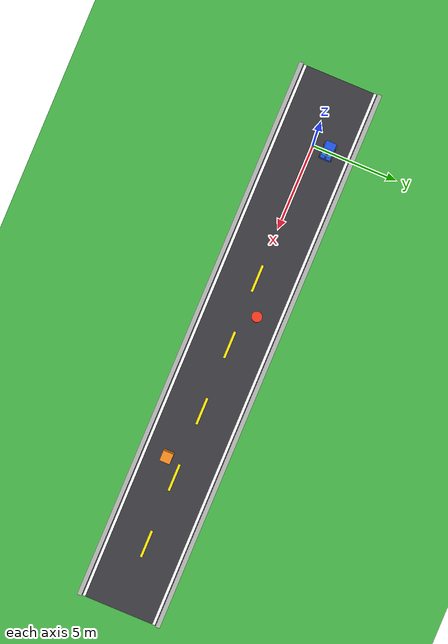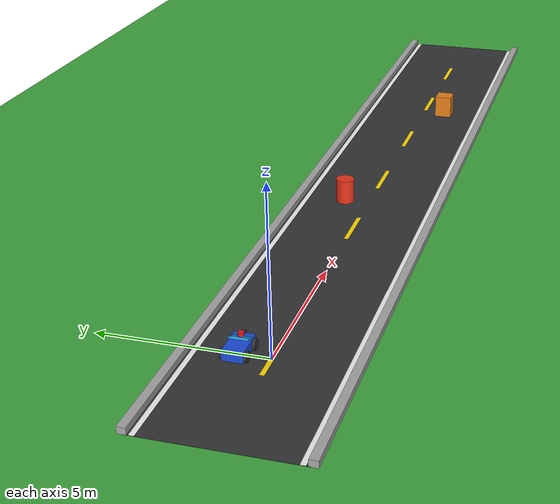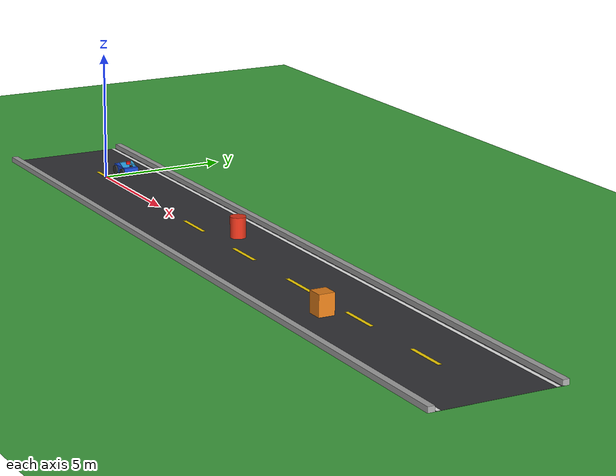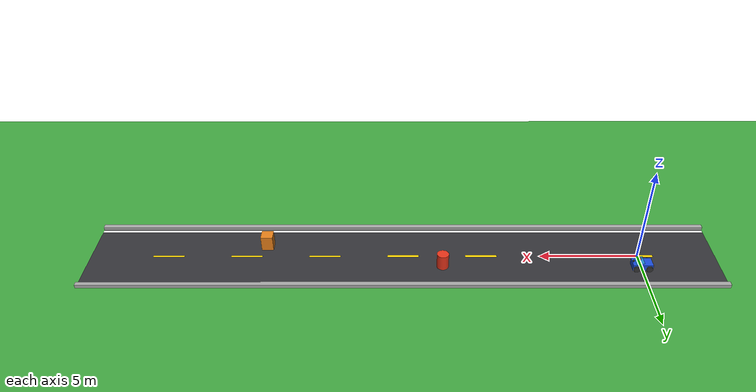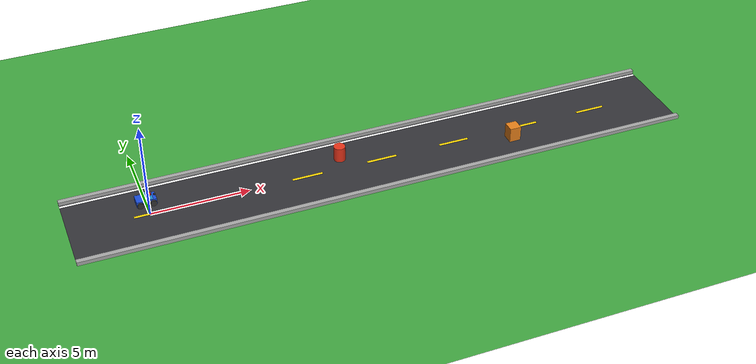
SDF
<?xml version="1.0" ?>
<sdf version="1.9">
  <world name="problem4_road_world">
    <physics name="1ms" type="ignored">
      <max_step_size>0.001</max_step_size>
      <real_time_factor>1.0</real_time_factor>
    </physics>
    <plugin filename="gz-sim-physics-system" name="gz::sim::systems::Physics"/>
    <plugin filename="gz-sim-user-commands-system" name="gz::sim::systems::UserCommands"/>
    <plugin filename="gz-sim-scene-broadcaster-system" name="gz::sim::systems::SceneBroadcaster"/>
    <plugin filename="gz-sim-sensors-system" name="gz::sim::systems::Sensors">
      <render_engine>ogre</render_engine>
    </plugin>

    <scene>
      <ambient>0.95 0.95 0.95 1</ambient>
      <background>0.82 0.90 0.96 1</background>
      <shadows>false</shadows>
    </scene>
    <light type="directional" name="sun">
      <diffuse>1 1 1 1</diffuse>
      <specular>0.3 0.3 0.3 1</specular>
      <direction>-0.3 0.3 -1</direction>
    </light>

    <!-- Ground Grass Plane -->
    <model name="ground_plane">
      <static>true</static>
      <link name="link">
        <collision name="c"><geometry><plane><normal>0 0 1</normal><size>60 60</size></plane></geometry></collision>
        <visual name="v">
          <geometry><plane><normal>0 0 1</normal><size>60 60</size></plane></geometry>
          <material><ambient>0.25 0.65 0.25 1</ambient><diffuse>0.25 0.65 0.25 1</diffuse></material>
        </visual>
      </link>
    </model>

    <!-- Asphalt Road Surface (Straight Segment & Track) -->
    <!-- Road Base (Length: 30m, Width: 4.5m) -->
    <model name="road_surface">
      <static>true</static><pose>12.0 0.0 0.005 0 0 0</pose>
      <link name="l">
        <visual name="v"><geometry><box><size>32.0 4.6 0.01</size></box></geometry>
          <material><ambient>0.2 0.2 0.22 1</ambient><diffuse>0.2 0.2 0.22 1</diffuse></material>
        </visual>
      </link>
    </model>

    <!-- Outer Left Road Boundary (White Line) -->
    <model name="line_outer_left">
      <static>true</static><pose>12.0 2.1 0.01 0 0 0</pose>
      <link name="l"><visual name="v"><geometry><box><size>32.0 0.15 0.01</size></box></geometry><material><ambient>0.95 0.95 0.95 1</ambient><diffuse>0.95 0.95 0.95 1</diffuse></material></visual></link>
    </model>

    <!-- Outer Right Road Boundary (White Line) -->
    <model name="line_outer_right">
      <static>true</static><pose>12.0 -2.1 0.01 0 0 0</pose>
      <link name="l"><visual name="v"><geometry><box><size>32.0 0.15 0.01</size></box></geometry><material><ambient>0.95 0.95 0.95 1</ambient><diffuse>0.95 0.95 0.95 1</diffuse></material></visual></link>
    </model>

    <!-- Yellow Dashed Center Lane Markings -->
    <model name="dash_1"><static>true</static><pose>0.0 0.0 0.012 0 0 0</pose><link name="l"><visual name="v"><geometry><box><size>1.6 0.14 0.01</size></box></geometry><material><ambient>1.0 0.85 0.0 1</ambient><diffuse>1.0 0.85 0.0 1</diffuse></material></visual></link></model>
    <model name="dash_2"><static>true</static><pose>4.0 0.0 0.012 0 0 0</pose><link name="l"><visual name="v"><geometry><box><size>1.6 0.14 0.01</size></box></geometry><material><ambient>1.0 0.85 0.0 1</ambient><diffuse>1.0 0.85 0.0 1</diffuse></material></visual></link></model>
    <model name="dash_3"><static>true</static><pose>8.0 0.0 0.012 0 0 0</pose><link name="l"><visual name="v"><geometry><box><size>1.6 0.14 0.01</size></box></geometry><material><ambient>1.0 0.85 0.0 1</ambient><diffuse>1.0 0.85 0.0 1</diffuse></material></visual></link></model>
    <model name="dash_4"><static>true</static><pose>12.0 0.0 0.012 0 0 0</pose><link name="l"><visual name="v"><geometry><box><size>1.6 0.14 0.01</size></box></geometry><material><ambient>1.0 0.85 0.0 1</ambient><diffuse>1.0 0.85 0.0 1</diffuse></material></visual></link></model>
    <model name="dash_5"><static>true</static><pose>16.0 0.0 0.012 0 0 0</pose><link name="l"><visual name="v"><geometry><box><size>1.6 0.14 0.01</size></box></geometry><material><ambient>1.0 0.85 0.0 1</ambient><diffuse>1.0 0.85 0.0 1</diffuse></material></visual></link></model>
    <model name="dash_6"><static>true</static><pose>20.0 0.0 0.012 0 0 0</pose><link name="l"><visual name="v"><geometry><box><size>1.6 0.14 0.01</size></box></geometry><material><ambient>1.0 0.85 0.0 1</ambient><diffuse>1.0 0.85 0.0 1</diffuse></material></visual></link></model>
    <model name="dash_7"><static>true</static><pose>24.0 0.0 0.012 0 0 0</pose><link name="l"><visual name="v"><geometry><box><size>1.6 0.14 0.01</size></box></geometry><material><ambient>1.0 0.85 0.0 1</ambient><diffuse>1.0 0.85 0.0 1</diffuse></material></visual></link></model>

    <!-- Side Road Curbs -->
    <model name="curb_left"><static>true</static><pose>12.0 2.35 0.1 0 0 0</pose><link name="l"><visual name="v"><geometry><box><size>32.0 0.25 0.2</size></box></geometry><material><ambient>0.65 0.65 0.65 1</ambient><diffuse>0.65 0.65 0.65 1</diffuse></material></visual><collision name="c"><geometry><box><size>32.0 0.25 0.2</size></box></geometry></collision></link></model>
    <model name="curb_right"><static>true</static><pose>12.0 -2.35 0.1 0 0 0</pose><link name="l"><visual name="v"><geometry><box><size>32.0 0.25 0.2</size></box></geometry><material><ambient>0.65 0.65 0.65 1</ambient><diffuse>0.65 0.65 0.65 1</diffuse></material></visual><collision name="c"><geometry><box><size>32.0 0.25 0.2</size></box></geometry></collision></link></model>

    <!-- Road Obstacles to Detect with LiDAR -->
    <model name="road_obstacle_1">
      <static>true</static><pose>10.0 0.8 0.4 0 0 0</pose>
      <link name="l">
        <visual name="v"><geometry><cylinder><radius>0.3</radius><length>0.8</length></cylinder></geometry>
          <material><ambient>0.9 0.2 0.1 1</ambient><diffuse>0.9 0.2 0.1 1</diffuse></material>
        </visual>
        <collision name="c"><geometry><cylinder><radius>0.3</radius><length>0.8</length></cylinder></geometry></collision>
      </link>
    </model>

    <model name="road_obstacle_2">
      <static>true</static><pose>19.0 -0.8 0.4 0 0 0</pose>
      <link name="l">
        <visual name="v"><geometry><box><size>0.6 0.6 0.8</size></box></geometry>
          <material><ambient>0.9 0.5 0.1 1</ambient><diffuse>0.9 0.5 0.1 1</diffuse></material>
        </visual>
        <collision name="c"><geometry><box><size>0.6 0.6 0.8</size></box></geometry></collision>
      </link>
    </model>

    <!-- Four-Wheel Autonomous Vehicle with Camera & LiDAR -->
    <model name="car">
      <pose>0.0 0.9 0.22 0 0 0</pose>
      <link name="chassis">
        <inertial><mass>3.0</mass><inertia><ixx>0.08</ixx><iyy>0.15</iyy><izz>0.20</izz></inertia></inertial>
        <collision name="c"><geometry><box><size>1.0 0.6 0.3</size></box></geometry></collision>
        <visual name="body">
          <geometry><box><size>1.0 0.6 0.3</size></box></geometry>
          <material><ambient>0.1 0.3 0.85 1</ambient><diffuse>0.1 0.3 0.85 1</diffuse></material>
        </visual>
        <!-- Windshield visual -->
        <visual name="glass">
          <pose>0.15 0 0.2 0 0.4 0</pose>
          <geometry><box><size>0.4 0.55 0.05</size></box></geometry>
          <material><ambient>0.2 0.7 0.9 0.8</ambient><diffuse>0.2 0.7 0.9 0.8</diffuse></material>
        </visual>
      </link>

      <!-- 4 Wheels -->
      <link name="fl_wheel">
        <pose>0.32 0.34 -0.05 0 0 0</pose><inertial><mass>0.3</mass><inertia><ixx>0.002</ixx><iyy>0.002</iyy><izz>0.002</izz></inertia></inertial>
        <collision name="c"><pose>0 0 0 1.5708 0 0</pose><geometry><cylinder><radius>0.16</radius><length>0.08</length></cylinder></geometry><surface><friction><ode><mu>10</mu><mu2>10</mu2></ode></friction></surface></collision>
        <visual name="v"><pose>0 0 0 1.5708 0 0</pose><geometry><cylinder><radius>0.16</radius><length>0.08</length></cylinder></geometry><material><ambient>0.2 0.2 0.2 1</ambient><diffuse>0.2 0.2 0.2 1</diffuse></material></visual>
      </link>
      <link name="fr_wheel">
        <pose>0.32 -0.34 -0.05 0 0 0</pose><inertial><mass>0.3</mass><inertia><ixx>0.002</ixx><iyy>0.002</iyy><izz>0.002</izz></inertia></inertial>
        <collision name="c"><pose>0 0 0 1.5708 0 0</pose><geometry><cylinder><radius>0.16</radius><length>0.08</length></cylinder></geometry><surface><friction><ode><mu>10</mu><mu2>10</mu2></ode></friction></surface></collision>
        <visual name="v"><pose>0 0 0 1.5708 0 0</pose><geometry><cylinder><radius>0.16</radius><length>0.08</length></cylinder></geometry><material><ambient>0.2 0.2 0.2 1</ambient><diffuse>0.2 0.2 0.2 1</diffuse></material></visual>
      </link>
      <link name="rl_wheel">
        <pose>-0.32 0.34 -0.05 0 0 0</pose><inertial><mass>0.3</mass><inertia><ixx>0.002</ixx><iyy>0.002</iyy><izz>0.002</izz></inertia></inertial>
        <collision name="c"><pose>0 0 0 1.5708 0 0</pose><geometry><cylinder><radius>0.16</radius><length>0.08</length></cylinder></geometry><surface><friction><ode><mu>10</mu><mu2>10</mu2></ode></friction></surface></collision>
        <visual name="v"><pose>0 0 0 1.5708 0 0</pose><geometry><cylinder><radius>0.16</radius><length>0.08</length></cylinder></geometry><material><ambient>0.2 0.2 0.2 1</ambient><diffuse>0.2 0.2 0.2 1</diffuse></material></visual>
      </link>
      <link name="rr_wheel">
        <pose>-0.32 -0.34 -0.05 0 0 0</pose><inertial><mass>0.3</mass><inertia><ixx>0.002</ixx><iyy>0.002</iyy><izz>0.002</izz></inertia></inertial>
        <collision name="c"><pose>0 0 0 1.5708 0 0</pose><geometry><cylinder><radius>0.16</radius><length>0.08</length></cylinder></geometry><surface><friction><ode><mu>10</mu><mu2>10</mu2></ode></friction></surface></collision>
        <visual name="v"><pose>0 0 0 1.5708 0 0</pose><geometry><cylinder><radius>0.16</radius><length>0.08</length></cylinder></geometry><material><ambient>0.2 0.2 0.2 1</ambient><diffuse>0.2 0.2 0.2 1</diffuse></material></visual>
      </link>

      <!-- Rooftop LiDAR -->
      <link name="lidar_link">
        <pose>0.2 0 0.30 0 0 0</pose><inertial><mass>0.1</mass><inertia><ixx>0.0002</ixx><iyy>0.0002</iyy><izz>0.0002</izz></inertia></inertial>
        <visual name="v"><geometry><cylinder><radius>0.09</radius><length>0.1</length></cylinder></geometry><material><ambient>0.9 0.1 0.1 1</ambient><diffuse>0.9 0.1 0.1 1</diffuse></material></visual>
        <sensor name="lidar" type="gpu_lidar">
          <always_on>true</always_on><visualize>true</visualize><update_rate>10</update_rate>
          <topic>/car/scan</topic>
          <lidar>
            <scan><horizontal><samples>180</samples><resolution>1</resolution><min_angle>-2.0</min_angle><max_angle>2.0</max_angle></horizontal></scan>
            <range><min>0.2</min><max>15.0</max><resolution>0.02</resolution></range>
          </lidar>
        </sensor>
      </link>

      <!-- Forward-Facing Downward-Angled Lane Detection Camera -->
      <link name="camera_link">
        <pose>0.45 0 0.22 0 0.35 0</pose><inertial><mass>0.05</mass><inertia><ixx>0.0001</ixx><iyy>0.0001</iyy><izz>0.0001</izz></inertia></inertial>
        <visual name="v"><geometry><box><size>0.08 0.1 0.06</size></box></geometry><material><ambient>0.2 0.2 0.2 1</ambient><diffuse>0.2 0.2 0.2 1</diffuse></material></visual>
        <sensor name="front_camera" type="camera">
          <always_on>true</always_on><update_rate>15</update_rate><visualize>true</visualize>
          <topic>/car/camera/image_raw</topic>
          <camera>
            <horizontal_fov>1.4</horizontal_fov>
            <image><width>640</width><height>480</height><format>R8G8B8</format></image>
            <clip><near>0.05</near><far>35.0</far></clip>
          </camera>
        </sensor>
      </link>

      <joint name="fl_joint" type="revolute"><parent>chassis</parent><child>fl_wheel</child><axis><xyz>0 1 0</xyz></axis></joint>
      <joint name="fr_joint" type="revolute"><parent>chassis</parent><child>fr_wheel</child><axis><xyz>0 1 0</xyz></axis></joint>
      <joint name="rl_joint" type="revolute"><parent>chassis</parent><child>rl_wheel</child><axis><xyz>0 1 0</xyz></axis></joint>
      <joint name="rr_joint" type="revolute"><parent>chassis</parent><child>rr_wheel</child><axis><xyz>0 1 0</xyz></axis></joint>
      <joint name="lidar_j" type="fixed"><parent>chassis</parent><child>lidar_link</child></joint>
      <joint name="cam_j" type="fixed"><parent>chassis</parent><child>camera_link</child></joint>

      <plugin filename="gz-sim-diff-drive-system" name="gz::sim::systems::DiffDrive">
        <left_joint>fl_joint</left_joint>
        <left_joint>rl_joint</left_joint>
        <right_joint>fr_joint</right_joint>
        <right_joint>rr_joint</right_joint>
        <wheel_separation>0.68</wheel_separation>
        <wheel_radius>0.16</wheel_radius>
        <odom_topic>/car/odometry</odom_topic>
        <topic>/car/cmd_vel</topic>
      </plugin>
    </model>
  </world>
</sdf>
